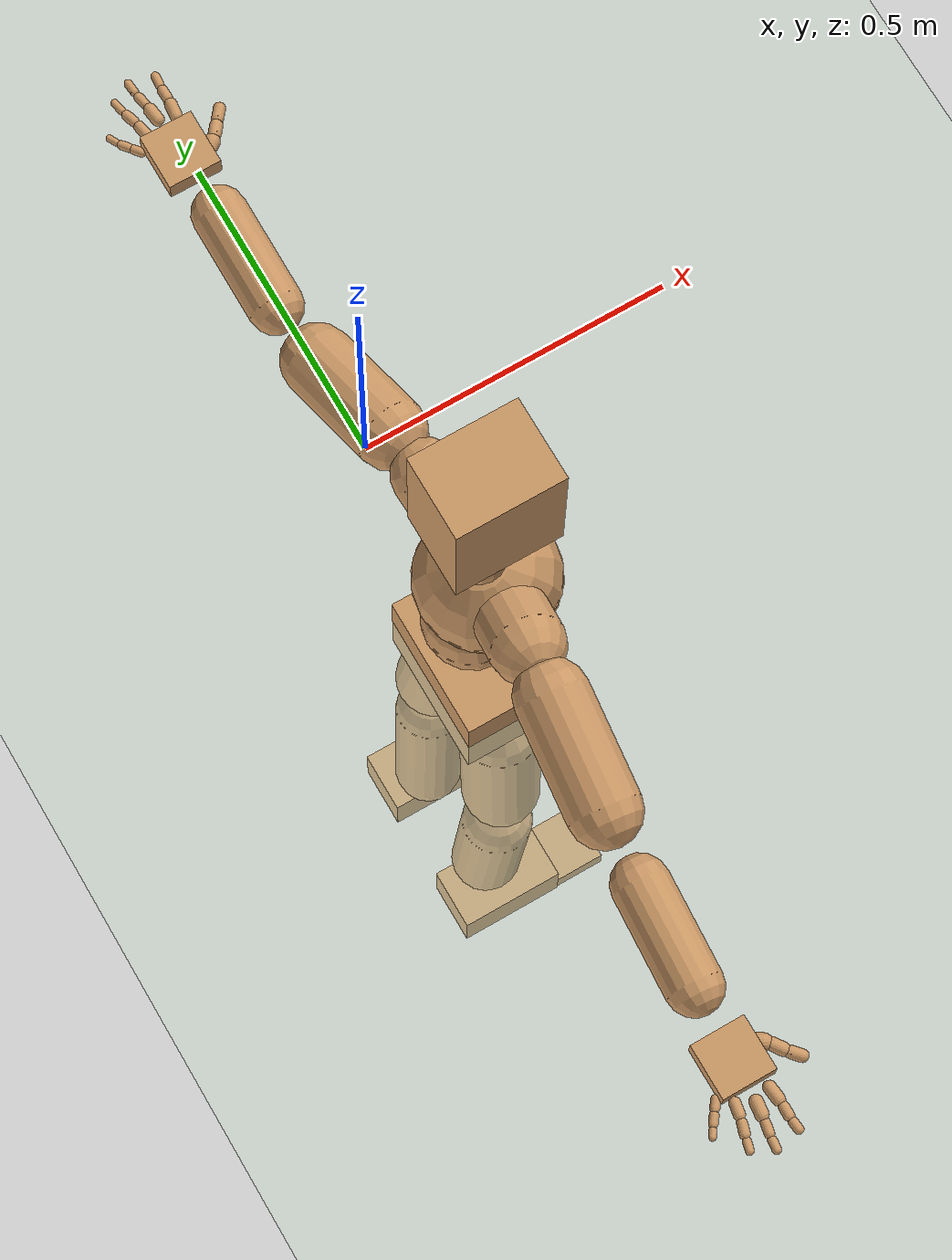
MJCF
<mujoco model="humanoid">
  <compiler coordinate="local" />
  <asset>
    <texture type="skybox" builtin="gradient" rgb1=".4 .5 .6" rgb2="0 0 0" width="100" height="100" />
    <texture builtin="flat" height="1278" mark="cross" markrgb="1 1 1" name="texgeom" random="0.01" rgb1="0.8 0.6 0.4" rgb2="0.8 0.6 0.4" type="cube" width="127" />
    <texture builtin="checker" height="100" name="texplane" rgb1="0 0 0" rgb2="0.8 0.8 0.8" type="2d" width="100" />
    <material name="MatPlane" reflectance="0.5" shininess="1" specular="1" texrepeat="60 60" texture="texplane" />
    <material name="geom" texture="texgeom" texuniform="true" />
  </asset>
  <worldbody>
    <light cutoff="100" diffuse="1 1 1" dir="-0 0 -1.3" directional="true" exponent="1" pos="0 0 1.3" specular=".1 .1 .1" />
    <geom conaffinity="1" condim="3" name="floor" pos="0 0 0" rgba="0.8 0.9 0.8 1" size="100 100 .2" type="plane" material="MatPlane" contype="7" margin="0.001" />
    <body name="Pelvis" pos="0.0031 -0.3514 0.012">
      <geom type="box" density="3021.964055" pos="-0.0168 -0.0031 -0.0215" size="0.084 0.1079 0.0846" quat="1.0000 0.0000 0.0000 0.0000" conaffinity="1" condim="3" contype="7" margin="0.001" rgba="0.8 0.6 .4 1" />
      <body name="L_Hip" pos="-0.026 0.0582 -0.0928">
        <joint name="L_Hip_x" type="hinge" pos="0 0 0" axis="1 0 0" stiffness="800" damping="80" armature="0.02" range="-180.0000 180.0000" limited="true" />
        <joint name="L_Hip_y" type="hinge" pos="0 0 0" axis="0 1 0" stiffness="800" damping="80" armature="0.02" range="-180.0000 180.0000" limited="true" />
        <joint name="L_Hip_z" type="hinge" pos="0 0 0" axis="0 0 1" stiffness="800" damping="80" armature="0.02" range="-180.0000 180.0000" limited="true" />
        <geom type="capsule" contype="1" conaffinity="1" density="2040.816327" fromto="-0.0019 0.0109 -0.0758 -0.0075 0.0438 -0.3030" size="0.0605" condim="3" margin="0.001" rgba="0.8 0.6 .4 1" />
        <body name="L_Knee" pos="-0.0094 0.0547 -0.3788">
          <joint name="L_Knee_x" type="hinge" pos="0 0 0" axis="1 0 0" stiffness="800" damping="80" armature="0.02" range="-180.0000 180.0000" limited="true" />
          <joint name="L_Knee_y" type="hinge" pos="0 0 0" axis="0 1 0" stiffness="800" damping="80" armature="0.02" range="-180.0000 180.0000" limited="true" />
          <joint name="L_Knee_z" type="hinge" pos="0 0 0" axis="0 0 1" stiffness="800" damping="80" armature="0.02" range="-180.0000 180.0000" limited="true" />
          <geom type="capsule" contype="1" conaffinity="1" density="1234.567901" fromto="-0.0064 -0.0087 -0.0806 -0.0255 -0.0348 -0.3224" size="0.0533" condim="3" margin="0.001" rgba="0.8 0.6 .4 1" />
          <body name="L_Ankle" pos="-0.0319 -0.0435 -0.4031">
            <joint name="L_Ankle_x" type="hinge" pos="0 0 0" axis="1 0 0" stiffness="800" damping="80" armature="0.02" range="-180.0000 180.0000" limited="true" />
            <joint name="L_Ankle_y" type="hinge" pos="0 0 0" axis="0 1 0" stiffness="800" damping="80" armature="0.02" range="-180.0000 180.0000" limited="true" />
            <joint name="L_Ankle_z" type="hinge" pos="0 0 0" axis="0 0 1" stiffness="800" damping="80" armature="0.02" range="-180.0000 180.0000" limited="true" />
            <geom type="box" density="445.819676" pos="0.0232 0.0407 -0.0287" size="0.0857 0.0498 0.0463" quat="1.0000 0.0000 0.0000 0.0000" conaffinity="1" condim="3" contype="7" margin="0.001" rgba="0.8 0.6 .4 1" />
            <body name="L_Toe" pos="0.1182 0.0473 -0.058">
              <joint name="L_Toe_x" type="hinge" pos="0 0 0" axis="1 0 0" stiffness="500" damping="50" armature="0.02" range="-180.0000 180.0000" limited="true" />
              <joint name="L_Toe_y" type="hinge" pos="0 0 0" axis="0 1 0" stiffness="500" damping="50" armature="0.02" range="-180.0000 180.0000" limited="true" />
              <joint name="L_Toe_z" type="hinge" pos="0 0 0" axis="0 0 1" stiffness="500" damping="50" armature="0.02" range="-180.0000 180.0000" limited="true" />
              <geom type="box" density="421.766439" pos="0.0256 -0.0065 0.0034" size="0.0495 0.0478 0.0205" quat="1.0000 0.0000 0.0000 0.0000" conaffinity="1" condim="3" contype="7" margin="0.001" rgba="0.8 0.6 .4 1" />
            </body>
          </body>
        </body>
      </body>
      <body name="R_Hip" pos="-0.0213 -0.0633 -0.1039">
        <joint name="R_Hip_x" type="hinge" pos="0 0 0" axis="1 0 0" stiffness="800" damping="80" armature="0.02" range="-180.0000 180.0000" limited="true" />
        <joint name="R_Hip_y" type="hinge" pos="0 0 0" axis="0 1 0" stiffness="800" damping="80" armature="0.02" range="-180.0000 180.0000" limited="true" />
        <joint name="R_Hip_z" type="hinge" pos="0 0 0" axis="0 0 1" stiffness="800" damping="80" armature="0.02" range="-180.0000 180.0000" limited="true" />
        <geom type="capsule" contype="1" conaffinity="1" density="2040.816327" fromto="-0.0034 -0.0088 -0.0725 -0.0135 -0.0354 -0.2899" size="0.0598" condim="3" margin="0.001" rgba="0.8 0.6 .4 1" />
        <body name="R_Knee" pos="-0.0168 -0.0442 -0.3624">
          <joint name="R_Knee_x" type="hinge" pos="0 0 0" axis="1 0 0" stiffness="800" damping="80" armature="0.02" range="-180.0000 180.0000" limited="true" />
          <joint name="R_Knee_y" type="hinge" pos="0 0 0" axis="0 1 0" stiffness="800" damping="80" armature="0.02" range="-180.0000 180.0000" limited="true" />
          <joint name="R_Knee_z" type="hinge" pos="0 0 0" axis="0 0 1" stiffness="800" damping="80" armature="0.02" range="-180.0000 180.0000" limited="true" />
          <geom type="capsule" contype="1" conaffinity="1" density="1234.567901" fromto="-0.0040 0.0031 -0.0821 -0.0162 0.0123 -0.3286" size="0.0551" condim="3" margin="0.001" rgba="0.8 0.6 .4 1" />
          <body name="R_Ankle" pos="-0.0202 0.0154 -0.4107">
            <joint name="R_Ankle_x" type="hinge" pos="0 0 0" axis="1 0 0" stiffness="800" damping="80" armature="0.02" range="-180.0000 180.0000" limited="true" />
            <joint name="R_Ankle_y" type="hinge" pos="0 0 0" axis="0 1 0" stiffness="800" damping="80" armature="0.02" range="-180.0000 180.0000" limited="true" />
            <joint name="R_Ankle_z" type="hinge" pos="0 0 0" axis="0 0 1" stiffness="800" damping="80" armature="0.02" range="-180.0000 180.0000" limited="true" />
            <geom type="box" density="445.807854" pos="0.0142 -0.0243 -0.0263" size="0.0857 0.0498 0.0464" quat="1.0000 0.0000 0.0000 0.0000" conaffinity="1" condim="3" contype="7" margin="0.001" rgba="0.8 0.6 .4 1" />
            <body name="R_Toe" pos="0.119 -0.0388 -0.0583">
              <joint name="R_Toe_x" type="hinge" pos="0 0 0" axis="1 0 0" stiffness="500" damping="50" armature="0.02" range="-180.0000 180.0000" limited="true" />
              <joint name="R_Toe_y" type="hinge" pos="0 0 0" axis="0 1 0" stiffness="500" damping="50" armature="0.02" range="-180.0000 180.0000" limited="true" />
              <joint name="R_Toe_z" type="hinge" pos="0 0 0" axis="0 0 1" stiffness="500" damping="50" armature="0.02" range="-180.0000 180.0000" limited="true" />
              <geom type="box" density="421.764462" pos="0.0158 0.0145 0.0062" size="0.0495 0.0478 0.0205" quat="1.0000 0.0000 0.0000 0.0000" conaffinity="1" condim="3" contype="7" margin="0.001" rgba="0.8 0.6 .4 1" />
            </body>
          </body>
        </body>
      </body>
      <body name="Torso" pos="-0.0276 -0.0028 0.1099">
        <joint name="Torso_x" type="hinge" pos="0 0 0" axis="1 0 0" stiffness="1000" damping="100" armature="0.02" range="-180.0000 180.0000" limited="true" />
        <joint name="Torso_y" type="hinge" pos="0 0 0" axis="0 1 0" stiffness="1000" damping="100" armature="0.02" range="-180.0000 180.0000" limited="true" />
        <joint name="Torso_z" type="hinge" pos="0 0 0" axis="0 0 1" stiffness="1000" damping="100" armature="0.02" range="-180.0000 180.0000" limited="true" />
        <geom type="capsule" contype="1" conaffinity="1" density="2040.816327" fromto="-0.0027 0.0043 0.0593 -0.0033 0.0052 0.0725" size="0.0719" condim="3" margin="0.001" rgba="0.8 0.6 .4 1" />
        <body name="Spine" pos="-0.0059 0.0094 0.1319">
          <joint name="Spine_x" type="hinge" pos="0 0 0" axis="1 0 0" stiffness="1000" damping="100" armature="0.02" range="-180.0000 180.0000" limited="true" />
          <joint name="Spine_y" type="hinge" pos="0 0 0" axis="0 1 0" stiffness="1000" damping="100" armature="0.02" range="-180.0000 180.0000" limited="true" />
          <joint name="Spine_z" type="hinge" pos="0 0 0" axis="0 0 1" stiffness="1000" damping="100" armature="0.02" range="-180.0000 180.0000" limited="true" />
          <geom type="capsule" contype="1" conaffinity="1" density="2040.816327" fromto="0.0128 -0.0051 0.0235 0.0156 -0.0062 0.0287" size="0.076" condim="3" margin="0.001" rgba="0.8 0.6 .4 1" />
          <body name="Chest" pos="0.0284 -0.0113 0.0522">
            <joint name="Chest_x" type="hinge" pos="0 0 0" axis="1 0 0" stiffness="1000" damping="100" armature="0.02" range="-180.0000 180.0000" limited="true" />
            <joint name="Chest_y" type="hinge" pos="0 0 0" axis="0 1 0" stiffness="1000" damping="100" armature="0.02" range="-180.0000 180.0000" limited="true" />
            <joint name="Chest_z" type="hinge" pos="0 0 0" axis="0 0 1" stiffness="1000" damping="100" armature="0.02" range="-180.0000 180.0000" limited="true" />
            <geom type="capsule" contype="1" conaffinity="1" density="2040.816327" fromto="-0.0078 -0.0020 0.0502 -0.0096 -0.0025 0.0613" size="0.1028" condim="3" margin="0.001" rgba="0.8 0.6 .4 1" />
            <body name="Neck" pos="-0.0316 -0.0122 0.1652">
              <joint name="Neck_x" type="hinge" pos="0 0 0" axis="1 0 0" stiffness="500" damping="50" armature="0.02" range="-180.0000 180.0000" limited="true" />
              <joint name="Neck_y" type="hinge" pos="0 0 0" axis="0 1 0" stiffness="500" damping="50" armature="0.02" range="-180.0000 180.0000" limited="true" />
              <joint name="Neck_z" type="hinge" pos="0 0 0" axis="0 0 1" stiffness="500" damping="50" armature="0.02" range="-180.0000 180.0000" limited="true" />
              <geom type="capsule" contype="1" conaffinity="1" density="1000" fromto="0.0041 0.0050 0.0321 0.0166 0.0198 0.1284" size="0.0419" condim="3" margin="0.001" rgba="0.8 0.6 .4 1" />
              <body name="Head" pos="0.0207 0.0248 0.1605">
                <joint name="Head_x" type="hinge" pos="0 0 0" axis="1 0 0" stiffness="500" damping="50" armature="0.02" range="-180.0000 180.0000" limited="true" />
                <joint name="Head_y" type="hinge" pos="0 0 0" axis="0 1 0" stiffness="500" damping="50" armature="0.02" range="-180.0000 180.0000" limited="true" />
                <joint name="Head_z" type="hinge" pos="0 0 0" axis="0 0 1" stiffness="500" damping="50" armature="0.02" range="-180.0000 180.0000" limited="true" />
                <geom type="box" density="1018.531631" pos="-0.0008 -0.0111 0.0414" size="0.0797 0.0609 0.1096" quat="1.0000 0.0000 0.0000 0.0000" conaffinity="1" condim="3" contype="7" margin="0.001" rgba="0.8 0.6 .4 1" />
              </body>
            </body>
            <body name="L_Thorax" pos="-0.0072 0.0464 0.0849">
              <joint name="L_Thorax_x" type="hinge" pos="0 0 0" axis="1 0 0" stiffness="500" damping="50" armature="0.02" range="-180.0000 180.0000" limited="true" />
              <joint name="L_Thorax_y" type="hinge" pos="0 0 0" axis="0 1 0" stiffness="500" damping="50" armature="0.02" range="-180.0000 180.0000" limited="true" />
              <joint name="L_Thorax_z" type="hinge" pos="0 0 0" axis="0 0 1" stiffness="500" damping="50" armature="0.02" range="-180.0000 180.0000" limited="true" />
              <geom type="capsule" contype="1" conaffinity="1" density="1000" fromto="-0.0031 0.0238 0.0115 -0.0124 0.0954 0.0462" size="0.0488" condim="3" margin="0.001" rgba="0.8 0.6 .4 1" />
              <body name="L_Shoulder" pos="-0.0155 0.1192 0.0577">
                <joint name="L_Shoulder_x" type="hinge" pos="0 0 0" axis="1 0 0" stiffness="500" damping="50" armature="0.02" range="-180.0000 180.0000" limited="true" />
                <joint name="L_Shoulder_y" type="hinge" pos="0 0 0" axis="0 1 0" stiffness="500" damping="50" armature="0.02" range="-180.0000 180.0000" limited="true" />
                <joint name="L_Shoulder_z" type="hinge" pos="0 0 0" axis="0 0 1" stiffness="500" damping="50" armature="0.02" range="-180.0000 180.0000" limited="true" />
                <geom type="capsule" contype="1" conaffinity="1" density="1000" fromto="-0.0085 0.0508 -0.0144 -0.0340 0.2033 -0.0577" size="0.0522" condim="3" margin="0.001" rgba="0.8 0.6 .4 1" />
                <body name="L_Elbow" pos="-0.0425 0.2541 -0.0722">
                  <joint name="L_Elbow_x" type="hinge" pos="0 0 0" axis="1 0 0" stiffness="500" damping="50" armature="0.02" range="-180.0000 180.0000" limited="true" />
                  <joint name="L_Elbow_y" type="hinge" pos="0 0 0" axis="0 1 0" stiffness="500" damping="50" armature="0.02" range="-180.0000 180.0000" limited="true" />
                  <joint name="L_Elbow_z" type="hinge" pos="0 0 0" axis="0 0 1" stiffness="500" damping="50" armature="0.02" range="-180.0000 180.0000" limited="true" />
                  <geom type="capsule" contype="1" conaffinity="1" density="1000" fromto="-0.0005 0.0504 0.0046 -0.0020 0.2016 0.0186" size="0.0401" condim="3" margin="0.001" rgba="0.8 0.6 .4 1" />
                  <body name="L_Wrist" pos="-0.0025 0.252 0.0232">
                    <joint name="L_Wrist_x" type="hinge" pos="0 0 0" axis="1 0 0" stiffness="300" damping="30" armature="0.02" range="-180.0000 180.0000" limited="true" />
                    <joint name="L_Wrist_y" type="hinge" pos="0 0 0" axis="0 1 0" stiffness="300" damping="30" armature="0.02" range="-180.0000 180.0000" limited="true" />
                    <joint name="L_Wrist_z" type="hinge" pos="0 0 0" axis="0 0 1" stiffness="300" damping="30" armature="0.02" range="-180.0000 180.0000" limited="true" />
                    <geom type="box" density="1198.336433" pos="-0.0031 0.0523 -0.0013" size="0.04 0.0428 0.0159" quat="1.0000 0.0000 0.0000 0.0000" conaffinity="1" condim="3" contype="7" margin="0.001" rgba="0.8 0.6 .4 1" />
                    <body name="L_Index1" pos="0.0194 0.1019 -0.0087">
                      <joint name="L_Index1_x" type="hinge" pos="0 0 0" axis="1 0 0" stiffness="100" damping="10" armature="0.02" range="-90 20" limited="true" />
                      <joint name="L_Index1_y" type="hinge" pos="0 0 0" axis="0 1 0" stiffness="100" damping="10" armature="0.02" range="-0.1 0.1" limited="true" />
                      <joint name="L_Index1_z" type="hinge" pos="0 0 0" axis="0 0 1" stiffness="100" damping="10" armature="0.02" range="-20 20" limited="true" />
                      <geom type="capsule" contype="1" conaffinity="1" density="1000" fromto="0.0006 0.0064 0.0004 0.0024 0.0256 0.0018" size="0.0091" condim="3" margin="0.001" rgba="0.8 0.6 .4 1" />
                      <body name="L_Index2" pos="0.003 0.0319 0.0022">
                        <joint name="L_Index2_x" type="hinge" pos="0 0 0" axis="1 0 0" stiffness="100" damping="10" armature="0.02" range="-100 0" limited="true" />
                        <joint name="L_Index2_y" type="hinge" pos="0 0 0" axis="0 1 0" stiffness="100" damping="10" armature="0.02" range="-0.1 0.1" limited="true" />
                        <joint name="L_Index2_z" type="hinge" pos="0 0 0" axis="0 0 1" stiffness="100" damping="10" armature="0.02" range="-0.1 0.1" limited="true" />
                        <geom type="capsule" contype="1" conaffinity="1" density="1000" fromto="0.0000 0.0045 -0.0005 0.0000 0.0180 -0.0019" size="0.0076" condim="3" margin="0.001" rgba="0.8 0.6 .4 1" />
                        <body name="L_Index3" pos="0.0001 0.0225 -0.0024">
                          <joint name="L_Index3_x" type="hinge" pos="0 0 0" axis="1 0 0" stiffness="100" damping="10" armature="0.02" range="-80 0" limited="true" />
                          <joint name="L_Index3_y" type="hinge" pos="0 0 0" axis="0 1 0" stiffness="100" damping="10" armature="0.02" range="-0.1 0.1" limited="true" />
                          <joint name="L_Index3_z" type="hinge" pos="0 0 0" axis="0 0 1" stiffness="100" damping="10" armature="0.02" range="-0.1 0.1" limited="true" />
                          <geom type="capsule" contype="1" conaffinity="1" density="1000" fromto="0.0004 0.0049 -0.0001 0.0016 0.0196 -0.0003" size="0.0064" condim="3" margin="0.001" rgba="0.8 0.6 .4 1" />
                        </body>
                      </body>
                    </body>
                    <body name="L_Middle1" pos="-0.004 0.1094 -0.0063">
                      <joint name="L_Middle1_x" type="hinge" pos="0 0 0" axis="1 0 0" stiffness="100" damping="10" armature="0.02" range="-90 20" limited="true" />
                      <joint name="L_Middle1_y" type="hinge" pos="0 0 0" axis="0 1 0" stiffness="100" damping="10" armature="0.02" range="-0.1 0.1" limited="true" />
                      <joint name="L_Middle1_z" type="hinge" pos="0 0 0" axis="0 0 1" stiffness="100" damping="10" armature="0.02" range="-20 20" limited="true" />
                      <geom type="capsule" contype="1" conaffinity="1" density="1000" fromto="-0.0008 0.0061 0.0002 -0.0032 0.0245 0.0006" size="0.0094" condim="3" margin="0.001" rgba="0.8 0.6 .4 1" />
                      <body name="L_Middle2" pos="-0.004 0.0306 0.0008">
                        <joint name="L_Middle2_x" type="hinge" pos="0 0 0" axis="1 0 0" stiffness="100" damping="10" armature="0.02" range="-100 0" limited="true" />
                        <joint name="L_Middle2_y" type="hinge" pos="0 0 0" axis="0 1 0" stiffness="100" damping="10" armature="0.02" range="-0.1 0.1" limited="true" />
                        <joint name="L_Middle2_z" type="hinge" pos="0 0 0" axis="0 0 1" stiffness="100" damping="10" armature="0.02" range="-0.1 0.1" limited="true" />
                        <geom type="capsule" contype="1" conaffinity="1" density="1000" fromto="-0.0008 0.0047 -0.0004 -0.0033 0.0188 -0.0016" size="0.007" condim="3" margin="0.001" rgba="0.8 0.6 .4 1" />
                        <body name="L_Middle3" pos="-0.0041 0.0235 -0.002">
                          <joint name="L_Middle3_x" type="hinge" pos="0 0 0" axis="1 0 0" stiffness="100" damping="10" armature="0.02" range="-80 0" limited="true" />
                          <joint name="L_Middle3_y" type="hinge" pos="0 0 0" axis="0 1 0" stiffness="100" damping="10" armature="0.02" range="-0.1 0.1" limited="true" />
                          <joint name="L_Middle3_z" type="hinge" pos="0 0 0" axis="0 0 1" stiffness="100" damping="10" armature="0.02" range="-0.1 0.1" limited="true" />
                          <geom type="capsule" contype="1" conaffinity="1" density="1000" fromto="-0.0004 0.0051 -0.0000 -0.0017 0.0204 -0.0000" size="0.0061" condim="3" margin="0.001" rgba="0.8 0.6 .4 1" />
                        </body>
                      </body>
                    </body>
                    <body name="L_Pinky1" pos="-0.0437 0.084 -0.0145">
                      <joint name="L_Pinky1_x" type="hinge" pos="0 0 0" axis="1 0 0" stiffness="100" damping="10" armature="0.02" range="-90 20" limited="true" />
                      <joint name="L_Pinky1_y" type="hinge" pos="0 0 0" axis="0 1 0" stiffness="100" damping="10" armature="0.02" range="-0.1 0.1" limited="true" />
                      <joint name="L_Pinky1_z" type="hinge" pos="0 0 0" axis="0 0 1" stiffness="100" damping="10" armature="0.02" range="-20 20" limited="true" />
                      <geom type="capsule" contype="1" conaffinity="1" density="1000" fromto="-0.0024 0.0031 -0.0002 -0.0096 0.0124 -0.0009" size="0.0067" condim="3" margin="0.001" rgba="0.8 0.6 .4 1" />
                      <body name="L_Pinky2" pos="-0.012 0.0155 -0.0011">
                        <joint name="L_Pinky2_x" type="hinge" pos="0 0 0" axis="1 0 0" stiffness="100" damping="10" armature="0.02" range="-100 0" limited="true" />
                        <joint name="L_Pinky2_y" type="hinge" pos="0 0 0" axis="0 1 0" stiffness="100" damping="10" armature="0.02" range="-0.1 0.1" limited="true" />
                        <joint name="L_Pinky2_z" type="hinge" pos="0 0 0" axis="0 0 1" stiffness="100" damping="10" armature="0.02" range="-0.1 0.1" limited="true" />
                        <geom type="capsule" contype="1" conaffinity="1" density="1000" fromto="-0.0022 0.0031 -0.0003 -0.0090 0.0124 -0.0013" size="0.0065" condim="3" margin="0.001" rgba="0.8 0.6 .4 1" />
                        <body name="L_Pinky3" pos="-0.0112 0.0155 -0.0017">
                          <joint name="L_Pinky3_x" type="hinge" pos="0 0 0" axis="1 0 0" stiffness="100" damping="10" armature="0.02" range="-80 0" limited="true" />
                          <joint name="L_Pinky3_y" type="hinge" pos="0 0 0" axis="0 1 0" stiffness="100" damping="10" armature="0.02" range="-0.1 0.1" limited="true" />
                          <joint name="L_Pinky3_z" type="hinge" pos="0 0 0" axis="0 0 1" stiffness="100" damping="10" armature="0.02" range="-0.1 0.1" limited="true" />
                          <geom type="capsule" contype="1" conaffinity="1" density="1000" fromto="-0.0018 0.0035 0.0001 -0.0074 0.0140 0.0003" size="0.005" condim="3" margin="0.001" rgba="0.8 0.6 .4 1" />
                        </body>
                      </body>
                    </body>
                    <body name="L_Ring1" pos="-0.0273 0.0974 -0.0093">
                      <joint name="L_Ring1_x" type="hinge" pos="0 0 0" axis="1 0 0" stiffness="100" damping="10" armature="0.02" range="-90 20" limited="true" />
                      <joint name="L_Ring1_y" type="hinge" pos="0 0 0" axis="0 1 0" stiffness="100" damping="10" armature="0.02" range="-0.1 0.1" limited="true" />
                      <joint name="L_Ring1_z" type="hinge" pos="0 0 0" axis="0 0 1" stiffness="100" damping="10" armature="0.02" range="-20 20" limited="true" />
                      <geom type="capsule" contype="1" conaffinity="1" density="1000" fromto="-0.0011 0.0056 0.0003 -0.0042 0.0224 0.0012" size="0.008" condim="3" margin="0.001" rgba="0.8 0.6 .4 1" />
                      <body name="L_Ring2" pos="-0.0053 0.028 0.0015">
                        <joint name="L_Ring2_x" type="hinge" pos="0 0 0" axis="1 0 0" stiffness="100" damping="10" armature="0.02" range="-100 0" limited="true" />
                        <joint name="L_Ring2_y" type="hinge" pos="0 0 0" axis="0 1 0" stiffness="100" damping="10" armature="0.02" range="-0.1 0.1" limited="true" />
                        <joint name="L_Ring2_z" type="hinge" pos="0 0 0" axis="0 0 1" stiffness="100" damping="10" armature="0.02" range="-0.1 0.1" limited="true" />
                        <geom type="capsule" contype="1" conaffinity="1" density="1000" fromto="-0.0014 0.0046 -0.0003 -0.0057 0.0183 -0.0012" size="0.0074" condim="3" margin="0.001" rgba="0.8 0.6 .4 1" />
                        <body name="L_Ring3" pos="-0.0071 0.0228 -0.0015">
                          <joint name="L_Ring3_x" type="hinge" pos="0 0 0" axis="1 0 0" stiffness="100" damping="10" armature="0.02" range="-80 0" limited="true" />
                          <joint name="L_Ring3_y" type="hinge" pos="0 0 0" axis="0 1 0" stiffness="100" damping="10" armature="0.02" range="-0.1 0.1" limited="true" />
                          <joint name="L_Ring3_z" type="hinge" pos="0 0 0" axis="0 0 1" stiffness="100" damping="10" armature="0.02" range="-0.1 0.1" limited="true" />
                          <geom type="capsule" contype="1" conaffinity="1" density="1000" fromto="-0.0010 0.0050 0.0001 -0.0041 0.0199 0.0004" size="0.0057" condim="3" margin="0.001" rgba="0.8 0.6 .4 1" />
                        </body>
                      </body>
                    </body>
                    <body name="L_Thumb1" pos="0.0256 0.0406 -0.018">
                      <joint name="L_Thumb1_x" type="hinge" pos="0 0 0" axis="1 0 0" stiffness="100" damping="10" armature="0.02" range="-45 45" limited="true" />
                      <joint name="L_Thumb1_y" type="hinge" pos="0 0 0" axis="0 1 0" stiffness="100" damping="10" armature="0.02" range="-45 130" limited="true" />
                      <joint name="L_Thumb1_z" type="hinge" pos="0 0 0" axis="0 0 1" stiffness="100" damping="10" armature="0.02" range="-30 70" limited="true" />
                      <geom type="capsule" contype="1" conaffinity="1" density="1000" fromto="0.0050 0.0034 0.0002 0.0200 0.0136 0.0008" size="0.012" condim="3" margin="0.001" rgba="0.8 0.6 .4 1" />
                      <body name="L_Thumb2" pos="0.025 0.017 0.001">
                        <joint name="L_Thumb2_x" type="hinge" pos="0 0 0" axis="1 0 0" stiffness="100" damping="10" armature="0.02" range="-0.1 0.1" limited="true" />
                        <joint name="L_Thumb2_y" type="hinge" pos="0 0 0" axis="0 1 0" stiffness="100" damping="10" armature="0.02" range="-0.1 0.1" limited="true" />
                        <joint name="L_Thumb2_z" type="hinge" pos="0 0 0" axis="0 0 1" stiffness="100" damping="10" armature="0.02" range="-20 55" limited="true" />
                        <geom type="capsule" contype="1" conaffinity="1" density="1000" fromto="0.0031 0.0041 -0.0010 0.0124 0.0164 -0.0041" size="0.0095" condim="3" margin="0.001" rgba="0.8 0.6 .4 1" />
                        <body name="L_Thumb3" pos="0.0155 0.0205 -0.0052">
                          <joint name="L_Thumb3_x" type="hinge" pos="0 0 0" axis="1 0 0" stiffness="100" damping="10" armature="0.02" range="-0.1 0.1" limited="true" />
                          <joint name="L_Thumb3_y" type="hinge" pos="0 0 0" axis="0 1 0" stiffness="100" damping="10" armature="0.02" range="-0.1 0.1" limited="true" />
                          <joint name="L_Thumb3_z" type="hinge" pos="0 0 0" axis="0 0 1" stiffness="100" damping="10" armature="0.02" range="-15 80" limited="true" />
                          <geom type="capsule" contype="1" conaffinity="1" density="1000" fromto="0.0035 0.0045 -0.0006 0.0140 0.0180 -0.0025" size="0.0087" condim="3" margin="0.001" rgba="0.8 0.6 .4 1" />
                        </body>
                      </body>
                    </body>
                  </body>
                </body>
              </body>
            </body>
            <body name="R_Thorax" pos="-0.0134 -0.0477 0.0843">
              <joint name="R_Thorax_x" type="hinge" pos="0 0 0" axis="1 0 0" stiffness="500" damping="50" armature="0.02" range="-180.0000 180.0000" limited="true" />
              <joint name="R_Thorax_y" type="hinge" pos="0 0 0" axis="0 1 0" stiffness="500" damping="50" armature="0.02" range="-180.0000 180.0000" limited="true" />
              <joint name="R_Thorax_z" type="hinge" pos="0 0 0" axis="0 0 1" stiffness="500" damping="50" armature="0.02" range="-180.0000 180.0000" limited="true" />
              <geom type="capsule" contype="1" conaffinity="1" density="1000" fromto="-0.0025 -0.0205 0.0107 -0.0101 -0.0821 0.0428" size="0.0536" condim="3" margin="0.001" rgba="0.8 0.6 .4 1" />
              <body name="R_Shoulder" pos="-0.0127 -0.1026 0.0535">
                <joint name="R_Shoulder_x" type="hinge" pos="0 0 0" axis="1 0 0" stiffness="500" damping="50" armature="0.02" range="-180.0000 180.0000" limited="true" />
                <joint name="R_Shoulder_y" type="hinge" pos="0 0 0" axis="0 1 0" stiffness="500" damping="50" armature="0.02" range="-180.0000 180.0000" limited="true" />
                <joint name="R_Shoulder_z" type="hinge" pos="0 0 0" axis="0 0 1" stiffness="500" damping="50" armature="0.02" range="-180.0000 180.0000" limited="true" />
                <geom type="capsule" contype="1" conaffinity="1" density="1000" fromto="-0.0053 -0.0542 -0.0073 -0.0212 -0.2169 -0.0292" size="0.0521" condim="3" margin="0.001" rgba="0.8 0.6 .4 1" />
                <body name="R_Elbow" pos="-0.0265 -0.2711 -0.0365">
                  <joint name="R_Elbow_x" type="hinge" pos="0 0 0" axis="1 0 0" stiffness="500" damping="50" armature="0.02" range="-180.0000 180.0000" limited="true" />
                  <joint name="R_Elbow_y" type="hinge" pos="0 0 0" axis="0 1 0" stiffness="500" damping="50" armature="0.02" range="-180.0000 180.0000" limited="true" />
                  <joint name="R_Elbow_z" type="hinge" pos="0 0 0" axis="0 0 1" stiffness="500" damping="50" armature="0.02" range="-180.0000 180.0000" limited="true" />
                  <geom type="capsule" contype="1" conaffinity="1" density="1000" fromto="-0.0031 -0.0499 -0.0009 -0.0123 -0.1994 -0.0036" size="0.0404" condim="3" margin="0.001" rgba="0.8 0.6 .4 1" />
                  <body name="R_Wrist" pos="-0.0153 -0.2493 -0.0045">
                    <joint name="R_Wrist_x" type="hinge" pos="0 0 0" axis="1 0 0" stiffness="300" damping="30" armature="0.02" range="-180.0000 180.0000" limited="true" />
                    <joint name="R_Wrist_y" type="hinge" pos="0 0 0" axis="0 1 0" stiffness="300" damping="30" armature="0.02" range="-180.0000 180.0000" limited="true" />
                    <joint name="R_Wrist_z" type="hinge" pos="0 0 0" axis="0 0 1" stiffness="300" damping="30" armature="0.02" range="-180.0000 180.0000" limited="true" />
                    <geom type="box" density="1230.823712" pos="-0.0029 -0.0537 -0.0044" size="0.04 0.0402 0.0159" quat="1.0000 0.0000 0.0000 0.0000" conaffinity="1" condim="3" contype="7" margin="0.001" rgba="0.8 0.6 .4 1" />
                    <body name="R_Index1" pos="0.0196 -0.0999 -0.0118">
                      <joint name="R_Index1_x" type="hinge" pos="0 0 0" axis="1 0 0" stiffness="100" damping="10" armature="0.02" range="-20 90" limited="true" />
                      <joint name="R_Index1_y" type="hinge" pos="0 0 0" axis="0 1 0" stiffness="100" damping="10" armature="0.02" range="-0.1 0.1" limited="true" />
                      <joint name="R_Index1_z" type="hinge" pos="0 0 0" axis="0 0 1" stiffness="100" damping="10" armature="0.02" range="-20 20" limited="true" />
                      <geom type="capsule" contype="1" conaffinity="1" density="1000" fromto="0.0006 -0.0064 0.0004 0.0024 -0.0256 0.0018" size="0.0091" condim="3" margin="0.001" rgba="0.8 0.6 .4 1" />
                      <body name="R_Index2" pos="0.003 -0.0319 0.0022">
                        <joint name="R_Index2_x" type="hinge" pos="0 0 0" axis="1 0 0" stiffness="100" damping="10" armature="0.02" range="0 100" limited="true" />
                        <joint name="R_Index2_y" type="hinge" pos="0 0 0" axis="0 1 0" stiffness="100" damping="10" armature="0.02" range="-0.1 0.1" limited="true" />
                        <joint name="R_Index2_z" type="hinge" pos="0 0 0" axis="0 0 1" stiffness="100" damping="10" armature="0.02" range="-0.1 0.1" limited="true" />
                        <geom type="capsule" contype="1" conaffinity="1" density="1000" fromto="0.0000 -0.0045 -0.0005 0.0000 -0.0180 -0.0019" size="0.0076" condim="3" margin="0.001" rgba="0.8 0.6 .4 1" />
                        <body name="R_Index3" pos="0.0001 -0.0225 -0.0023">
                          <joint name="R_Index3_x" type="hinge" pos="0 0 0" axis="1 0 0" stiffness="100" damping="10" armature="0.02" range="0 80" limited="true" />
                          <joint name="R_Index3_y" type="hinge" pos="0 0 0" axis="0 1 0" stiffness="100" damping="10" armature="0.02" range="-0.1 0.1" limited="true" />
                          <joint name="R_Index3_z" type="hinge" pos="0 0 0" axis="0 0 1" stiffness="100" damping="10" armature="0.02" range="-0.1 0.1" limited="true" />
                          <geom type="capsule" contype="1" conaffinity="1" density="1000" fromto="0.0004 -0.0041 -0.0001 0.0016 -0.0164 -0.0003" size="0.0067" condim="3" margin="0.001" rgba="0.8 0.6 .4 1" />
                        </body>
                      </body>
                    </body>
                    <body name="R_Middle1" pos="-0.0037 -0.1074 -0.0094">
                      <joint name="R_Middle1_x" type="hinge" pos="0 0 0" axis="1 0 0" stiffness="100" damping="10" armature="0.02" range="-20 90" limited="true" />
                      <joint name="R_Middle1_y" type="hinge" pos="0 0 0" axis="0 1 0" stiffness="100" damping="10" armature="0.02" range="-0.1 0.1" limited="true" />
                      <joint name="R_Middle1_z" type="hinge" pos="0 0 0" axis="0 0 1" stiffness="100" damping="10" armature="0.02" range="-20 20" limited="true" />
                      <geom type="capsule" contype="1" conaffinity="1" density="1000" fromto="-0.0008 -0.0061 0.0002 -0.0032 -0.0245 0.0006" size="0.0094" condim="3" margin="0.001" rgba="0.8 0.6 .4 1" />
                      <body name="R_Middle2" pos="-0.004 -0.0306 0.0008">
                        <joint name="R_Middle2_x" type="hinge" pos="0 0 0" axis="1 0 0" stiffness="100" damping="10" armature="0.02" range="0 100" limited="true" />
                        <joint name="R_Middle2_y" type="hinge" pos="0 0 0" axis="0 1 0" stiffness="100" damping="10" armature="0.02" range="-0.1 0.1" limited="true" />
                        <joint name="R_Middle2_z" type="hinge" pos="0 0 0" axis="0 0 1" stiffness="100" damping="10" armature="0.02" range="-0.1 0.1" limited="true" />
                        <geom type="capsule" contype="1" conaffinity="1" density="1000" fromto="-0.0008 -0.0047 -0.0004 -0.0033 -0.0188 -0.0016" size="0.007" condim="3" margin="0.001" rgba="0.8 0.6 .4 1" />
                        <body name="R_Middle3" pos="-0.0041 -0.0235 -0.002">
                          <joint name="R_Middle3_x" type="hinge" pos="0 0 0" axis="1 0 0" stiffness="100" damping="10" armature="0.02" range="0 80" limited="true" />
                          <joint name="R_Middle3_y" type="hinge" pos="0 0 0" axis="0 1 0" stiffness="100" damping="10" armature="0.02" range="-0.1 0.1" limited="true" />
                          <joint name="R_Middle3_z" type="hinge" pos="0 0 0" axis="0 0 1" stiffness="100" damping="10" armature="0.02" range="-0.1 0.1" limited="true" />
                          <geom type="capsule" contype="1" conaffinity="1" density="1000" fromto="-0.0004 -0.0043 -0.0000 -0.0017 -0.0172 -0.0000" size="0.0064" condim="3" margin="0.001" rgba="0.8 0.6 .4 1" />
                        </body>
                      </body>
                    </body>
                    <body name="R_Pinky1" pos="-0.0435 -0.082 -0.0176">
                      <joint name="R_Pinky1_x" type="hinge" pos="0 0 0" axis="1 0 0" stiffness="100" damping="10" armature="0.02" range="-20 90" limited="true" />
                      <joint name="R_Pinky1_y" type="hinge" pos="0 0 0" axis="0 1 0" stiffness="100" damping="10" armature="0.02" range="-0.1 0.1" limited="true" />
                      <joint name="R_Pinky1_z" type="hinge" pos="0 0 0" axis="0 0 1" stiffness="100" damping="10" armature="0.02" range="-20 20" limited="true" />
                      <geom type="capsule" contype="1" conaffinity="1" density="1000" fromto="-0.0024 -0.0031 -0.0002 -0.0096 -0.0124 -0.0009" size="0.0067" condim="3" margin="0.001" rgba="0.8 0.6 .4 1" />
                      <body name="R_Pinky2" pos="-0.012 -0.0155 -0.0011">
                        <joint name="R_Pinky2_x" type="hinge" pos="0 0 0" axis="1 0 0" stiffness="100" damping="10" armature="0.02" range="0 100" limited="true" />
                        <joint name="R_Pinky2_y" type="hinge" pos="0 0 0" axis="0 1 0" stiffness="100" damping="10" armature="0.02" range="-0.1 0.1" limited="true" />
                        <joint name="R_Pinky2_z" type="hinge" pos="0 0 0" axis="0 0 1" stiffness="100" damping="10" armature="0.02" range="-0.1 0.1" limited="true" />
                        <geom type="capsule" contype="1" conaffinity="1" density="1000" fromto="-0.0022 -0.0031 -0.0003 -0.0090 -0.0124 -0.0013" size="0.0065" condim="3" margin="0.001" rgba="0.8 0.6 .4 1" />
                        <body name="R_Pinky3" pos="-0.0112 -0.0155 -0.0017">
                          <joint name="R_Pinky3_x" type="hinge" pos="0 0 0" axis="1 0 0" stiffness="100" damping="10" armature="0.02" range="0 80" limited="true" />
                          <joint name="R_Pinky3_y" type="hinge" pos="0 0 0" axis="0 1 0" stiffness="100" damping="10" armature="0.02" range="-0.1 0.1" limited="true" />
                          <joint name="R_Pinky3_z" type="hinge" pos="0 0 0" axis="0 0 1" stiffness="100" damping="10" armature="0.02" range="-0.1 0.1" limited="true" />
                          <geom type="capsule" contype="1" conaffinity="1" density="1000" fromto="-0.0018 -0.0027 0.0001 -0.0074 -0.0108 0.0003" size="0.0052" condim="3" margin="0.001" rgba="0.8 0.6 .4 1" />
                        </body>
                      </body>
                    </body>
                    <body name="R_Ring1" pos="-0.0271 -0.0954 -0.0124">
                      <joint name="R_Ring1_x" type="hinge" pos="0 0 0" axis="1 0 0" stiffness="100" damping="10" armature="0.02" range="-20 90" limited="true" />
                      <joint name="R_Ring1_y" type="hinge" pos="0 0 0" axis="0 1 0" stiffness="100" damping="10" armature="0.02" range="-0.1 0.1" limited="true" />
                      <joint name="R_Ring1_z" type="hinge" pos="0 0 0" axis="0 0 1" stiffness="100" damping="10" armature="0.02" range="-20 20" limited="true" />
                      <geom type="capsule" contype="1" conaffinity="1" density="1000" fromto="-0.0011 -0.0056 0.0003 -0.0042 -0.0224 0.0012" size="0.008" condim="3" margin="0.001" rgba="0.8 0.6 .4 1" />
                      <body name="R_Ring2" pos="-0.0053 -0.028 0.0015">
                        <joint name="R_Ring2_x" type="hinge" pos="0 0 0" axis="1 0 0" stiffness="100" damping="10" armature="0.02" range="0 100" limited="true" />
                        <joint name="R_Ring2_y" type="hinge" pos="0 0 0" axis="0 1 0" stiffness="100" damping="10" armature="0.02" range="-0.1 0.1" limited="true" />
                        <joint name="R_Ring2_z" type="hinge" pos="0 0 0" axis="0 0 1" stiffness="100" damping="10" armature="0.02" range="-0.1 0.1" limited="true" />
                        <geom type="capsule" contype="1" conaffinity="1" density="1000" fromto="-0.0014 -0.0046 -0.0003 -0.0057 -0.0183 -0.0012" size="0.0074" condim="3" margin="0.001" rgba="0.8 0.6 .4 1" />
                        <body name="R_Ring3" pos="-0.0071 -0.0228 -0.0015">
                          <joint name="R_Ring3_x" type="hinge" pos="0 0 0" axis="1 0 0" stiffness="100" damping="10" armature="0.02" range="0 80" limited="true" />
                          <joint name="R_Ring3_y" type="hinge" pos="0 0 0" axis="0 1 0" stiffness="100" damping="10" armature="0.02" range="-0.1 0.1" limited="true" />
                          <joint name="R_Ring3_z" type="hinge" pos="0 0 0" axis="0 0 1" stiffness="100" damping="10" armature="0.02" range="-0.1 0.1" limited="true" />
                          <geom type="capsule" contype="1" conaffinity="1" density="1000" fromto="-0.0010 -0.0042 0.0001 -0.0041 -0.0167 0.0004" size="0.006" condim="3" margin="0.001" rgba="0.8 0.6 .4 1" />
                        </body>
                      </body>
                    </body>
                    <body name="R_Thumb1" pos="0.0259 -0.0386 -0.0211">
                      <joint name="R_Thumb1_x" type="hinge" pos="0 0 0" axis="1 0 0" stiffness="100" damping="10" armature="0.02" range="-45 45" limited="true" />
                      <joint name="R_Thumb1_y" type="hinge" pos="0 0 0" axis="0 1 0" stiffness="100" damping="10" armature="0.02" range="-45 130" limited="true" />
                      <joint name="R_Thumb1_z" type="hinge" pos="0 0 0" axis="0 0 1" stiffness="100" damping="10" armature="0.02" range="-70 30" limited="true" />
                      <geom type="capsule" contype="1" conaffinity="1" density="1000" fromto="0.0050 -0.0034 0.0002 0.0200 -0.0136 0.0008" size="0.012" condim="3" margin="0.001" rgba="0.8 0.6 .4 1" />
                      <body name="R_Thumb2" pos="0.025 -0.017 0.001">
                        <joint name="R_Thumb2_x" type="hinge" pos="0 0 0" axis="1 0 0" stiffness="100" damping="10" armature="0.02" range="-0.1 0.1" limited="true" />
                        <joint name="R_Thumb2_y" type="hinge" pos="0 0 0" axis="0 1 0" stiffness="100" damping="10" armature="0.02" range="-0.1 0.1" limited="true" />
                        <joint name="R_Thumb2_z" type="hinge" pos="0 0 0" axis="0 0 1" stiffness="100" damping="10" armature="0.02" range="-55 20" limited="true" />
                        <geom type="capsule" contype="1" conaffinity="1" density="1000" fromto="0.0031 -0.0041 -0.0010 0.0124 -0.0164 -0.0041" size="0.0095" condim="3" margin="0.001" rgba="0.8 0.6 .4 1" />
                        <body name="R_Thumb3" pos="0.0155 -0.0205 -0.0052">
                          <joint name="R_Thumb3_x" type="hinge" pos="0 0 0" axis="1 0 0" stiffness="100" damping="10" armature="0.02" range="-0.1 0.1" limited="true" />
                          <joint name="R_Thumb3_y" type="hinge" pos="0 0 0" axis="0 1 0" stiffness="100" damping="10" armature="0.02" range="-0.1 0.1" limited="true" />
                          <joint name="R_Thumb3_z" type="hinge" pos="0 0 0" axis="0 0 1" stiffness="100" damping="10" armature="0.02" range="-80 15" limited="true" />
                          <geom type="capsule" contype="1" conaffinity="1" density="1000" fromto="0.0035 -0.0037 -0.0006 0.0140 -0.0148 -0.0025" size="0.009" condim="3" margin="0.001" rgba="0.8 0.6 .4 1" />
                        </body>
                      </body>
                    </body>
                  </body>
                </body>
              </body>
            </body>
          </body>
        </body>
      </body>
    <joint type="free" name="Pelvis" limited="false" actuatorfrclimited="false" /></body>
  </worldbody>
  <actuator>
    <motor name="L_Hip_x" joint="L_Hip_x" gear="500" />
    <motor name="L_Hip_y" joint="L_Hip_y" gear="500" />
    <motor name="L_Hip_z" joint="L_Hip_z" gear="500" />
    <motor name="L_Knee_x" joint="L_Knee_x" gear="500" />
    <motor name="L_Knee_y" joint="L_Knee_y" gear="500" />
    <motor name="L_Knee_z" joint="L_Knee_z" gear="500" />
    <motor name="L_Ankle_x" joint="L_Ankle_x" gear="500" />
    <motor name="L_Ankle_y" joint="L_Ankle_y" gear="500" />
    <motor name="L_Ankle_z" joint="L_Ankle_z" gear="500" />
    <motor name="L_Toe_x" joint="L_Toe_x" gear="500" />
    <motor name="L_Toe_y" joint="L_Toe_y" gear="500" />
    <motor name="L_Toe_z" joint="L_Toe_z" gear="500" />
    <motor name="R_Hip_x" joint="R_Hip_x" gear="500" />
    <motor name="R_Hip_y" joint="R_Hip_y" gear="500" />
    <motor name="R_Hip_z" joint="R_Hip_z" gear="500" />
    <motor name="R_Knee_x" joint="R_Knee_x" gear="500" />
    <motor name="R_Knee_y" joint="R_Knee_y" gear="500" />
    <motor name="R_Knee_z" joint="R_Knee_z" gear="500" />
    <motor name="R_Ankle_x" joint="R_Ankle_x" gear="500" />
    <motor name="R_Ankle_y" joint="R_Ankle_y" gear="500" />
    <motor name="R_Ankle_z" joint="R_Ankle_z" gear="500" />
    <motor name="R_Toe_x" joint="R_Toe_x" gear="500" />
    <motor name="R_Toe_y" joint="R_Toe_y" gear="500" />
    <motor name="R_Toe_z" joint="R_Toe_z" gear="500" />
    <motor name="Torso_x" joint="Torso_x" gear="500" />
    <motor name="Torso_y" joint="Torso_y" gear="500" />
    <motor name="Torso_z" joint="Torso_z" gear="500" />
    <motor name="Spine_x" joint="Spine_x" gear="500" />
    <motor name="Spine_y" joint="Spine_y" gear="500" />
    <motor name="Spine_z" joint="Spine_z" gear="500" />
    <motor name="Chest_x" joint="Chest_x" gear="500" />
    <motor name="Chest_y" joint="Chest_y" gear="500" />
    <motor name="Chest_z" joint="Chest_z" gear="500" />
    <motor name="Neck_x" joint="Neck_x" gear="500" />
    <motor name="Neck_y" joint="Neck_y" gear="500" />
    <motor name="Neck_z" joint="Neck_z" gear="500" />
    <motor name="Head_x" joint="Head_x" gear="500" />
    <motor name="Head_y" joint="Head_y" gear="500" />
    <motor name="Head_z" joint="Head_z" gear="500" />
    <motor name="L_Thorax_x" joint="L_Thorax_x" gear="500" />
    <motor name="L_Thorax_y" joint="L_Thorax_y" gear="500" />
    <motor name="L_Thorax_z" joint="L_Thorax_z" gear="500" />
    <motor name="L_Shoulder_x" joint="L_Shoulder_x" gear="500" />
    <motor name="L_Shoulder_y" joint="L_Shoulder_y" gear="500" />
    <motor name="L_Shoulder_z" joint="L_Shoulder_z" gear="500" />
    <motor name="L_Elbow_x" joint="L_Elbow_x" gear="500" />
    <motor name="L_Elbow_y" joint="L_Elbow_y" gear="500" />
    <motor name="L_Elbow_z" joint="L_Elbow_z" gear="500" />
    <motor name="L_Wrist_x" joint="L_Wrist_x" gear="500" />
    <motor name="L_Wrist_y" joint="L_Wrist_y" gear="500" />
    <motor name="L_Wrist_z" joint="L_Wrist_z" gear="500" />
    <motor name="L_Index1_x" joint="L_Index1_x" gear="500" />
    <motor name="L_Index1_y" joint="L_Index1_y" gear="500" />
    <motor name="L_Index1_z" joint="L_Index1_z" gear="500" />
    <motor name="L_Index2_x" joint="L_Index2_x" gear="500" />
    <motor name="L_Index2_y" joint="L_Index2_y" gear="500" />
    <motor name="L_Index2_z" joint="L_Index2_z" gear="500" />
    <motor name="L_Index3_x" joint="L_Index3_x" gear="500" />
    <motor name="L_Index3_y" joint="L_Index3_y" gear="500" />
    <motor name="L_Index3_z" joint="L_Index3_z" gear="500" />
    <motor name="L_Middle1_x" joint="L_Middle1_x" gear="500" />
    <motor name="L_Middle1_y" joint="L_Middle1_y" gear="500" />
    <motor name="L_Middle1_z" joint="L_Middle1_z" gear="500" />
    <motor name="L_Middle2_x" joint="L_Middle2_x" gear="500" />
    <motor name="L_Middle2_y" joint="L_Middle2_y" gear="500" />
    <motor name="L_Middle2_z" joint="L_Middle2_z" gear="500" />
    <motor name="L_Middle3_x" joint="L_Middle3_x" gear="500" />
    <motor name="L_Middle3_y" joint="L_Middle3_y" gear="500" />
    <motor name="L_Middle3_z" joint="L_Middle3_z" gear="500" />
    <motor name="L_Pinky1_x" joint="L_Pinky1_x" gear="500" />
    <motor name="L_Pinky1_y" joint="L_Pinky1_y" gear="500" />
    <motor name="L_Pinky1_z" joint="L_Pinky1_z" gear="500" />
    <motor name="L_Pinky2_x" joint="L_Pinky2_x" gear="500" />
    <motor name="L_Pinky2_y" joint="L_Pinky2_y" gear="500" />
    <motor name="L_Pinky2_z" joint="L_Pinky2_z" gear="500" />
    <motor name="L_Pinky3_x" joint="L_Pinky3_x" gear="500" />
    <motor name="L_Pinky3_y" joint="L_Pinky3_y" gear="500" />
    <motor name="L_Pinky3_z" joint="L_Pinky3_z" gear="500" />
    <motor name="L_Ring1_x" joint="L_Ring1_x" gear="500" />
    <motor name="L_Ring1_y" joint="L_Ring1_y" gear="500" />
    <motor name="L_Ring1_z" joint="L_Ring1_z" gear="500" />
    <motor name="L_Ring2_x" joint="L_Ring2_x" gear="500" />
    <motor name="L_Ring2_y" joint="L_Ring2_y" gear="500" />
    <motor name="L_Ring2_z" joint="L_Ring2_z" gear="500" />
    <motor name="L_Ring3_x" joint="L_Ring3_x" gear="500" />
    <motor name="L_Ring3_y" joint="L_Ring3_y" gear="500" />
    <motor name="L_Ring3_z" joint="L_Ring3_z" gear="500" />
    <motor name="L_Thumb1_x" joint="L_Thumb1_x" gear="500" />
    <motor name="L_Thumb1_y" joint="L_Thumb1_y" gear="500" />
    <motor name="L_Thumb1_z" joint="L_Thumb1_z" gear="500" />
    <motor name="L_Thumb2_x" joint="L_Thumb2_x" gear="500" />
    <motor name="L_Thumb2_y" joint="L_Thumb2_y" gear="500" />
    <motor name="L_Thumb2_z" joint="L_Thumb2_z" gear="500" />
    <motor name="L_Thumb3_x" joint="L_Thumb3_x" gear="500" />
    <motor name="L_Thumb3_y" joint="L_Thumb3_y" gear="500" />
    <motor name="L_Thumb3_z" joint="L_Thumb3_z" gear="500" />
    <motor name="R_Thorax_x" joint="R_Thorax_x" gear="500" />
    <motor name="R_Thorax_y" joint="R_Thorax_y" gear="500" />
    <motor name="R_Thorax_z" joint="R_Thorax_z" gear="500" />
    <motor name="R_Shoulder_x" joint="R_Shoulder_x" gear="500" />
    <motor name="R_Shoulder_y" joint="R_Shoulder_y" gear="500" />
    <motor name="R_Shoulder_z" joint="R_Shoulder_z" gear="500" />
    <motor name="R_Elbow_x" joint="R_Elbow_x" gear="500" />
    <motor name="R_Elbow_y" joint="R_Elbow_y" gear="500" />
    <motor name="R_Elbow_z" joint="R_Elbow_z" gear="500" />
    <motor name="R_Wrist_x" joint="R_Wrist_x" gear="500" />
    <motor name="R_Wrist_y" joint="R_Wrist_y" gear="500" />
    <motor name="R_Wrist_z" joint="R_Wrist_z" gear="500" />
    <motor name="R_Index1_x" joint="R_Index1_x" gear="500" />
    <motor name="R_Index1_y" joint="R_Index1_y" gear="500" />
    <motor name="R_Index1_z" joint="R_Index1_z" gear="500" />
    <motor name="R_Index2_x" joint="R_Index2_x" gear="500" />
    <motor name="R_Index2_y" joint="R_Index2_y" gear="500" />
    <motor name="R_Index2_z" joint="R_Index2_z" gear="500" />
    <motor name="R_Index3_x" joint="R_Index3_x" gear="500" />
    <motor name="R_Index3_y" joint="R_Index3_y" gear="500" />
    <motor name="R_Index3_z" joint="R_Index3_z" gear="500" />
    <motor name="R_Middle1_x" joint="R_Middle1_x" gear="500" />
    <motor name="R_Middle1_y" joint="R_Middle1_y" gear="500" />
    <motor name="R_Middle1_z" joint="R_Middle1_z" gear="500" />
    <motor name="R_Middle2_x" joint="R_Middle2_x" gear="500" />
    <motor name="R_Middle2_y" joint="R_Middle2_y" gear="500" />
    <motor name="R_Middle2_z" joint="R_Middle2_z" gear="500" />
    <motor name="R_Middle3_x" joint="R_Middle3_x" gear="500" />
    <motor name="R_Middle3_y" joint="R_Middle3_y" gear="500" />
    <motor name="R_Middle3_z" joint="R_Middle3_z" gear="500" />
    <motor name="R_Pinky1_x" joint="R_Pinky1_x" gear="500" />
    <motor name="R_Pinky1_y" joint="R_Pinky1_y" gear="500" />
    <motor name="R_Pinky1_z" joint="R_Pinky1_z" gear="500" />
    <motor name="R_Pinky2_x" joint="R_Pinky2_x" gear="500" />
    <motor name="R_Pinky2_y" joint="R_Pinky2_y" gear="500" />
    <motor name="R_Pinky2_z" joint="R_Pinky2_z" gear="500" />
    <motor name="R_Pinky3_x" joint="R_Pinky3_x" gear="500" />
    <motor name="R_Pinky3_y" joint="R_Pinky3_y" gear="500" />
    <motor name="R_Pinky3_z" joint="R_Pinky3_z" gear="500" />
    <motor name="R_Ring1_x" joint="R_Ring1_x" gear="500" />
    <motor name="R_Ring1_y" joint="R_Ring1_y" gear="500" />
    <motor name="R_Ring1_z" joint="R_Ring1_z" gear="500" />
    <motor name="R_Ring2_x" joint="R_Ring2_x" gear="500" />
    <motor name="R_Ring2_y" joint="R_Ring2_y" gear="500" />
    <motor name="R_Ring2_z" joint="R_Ring2_z" gear="500" />
    <motor name="R_Ring3_x" joint="R_Ring3_x" gear="500" />
    <motor name="R_Ring3_y" joint="R_Ring3_y" gear="500" />
    <motor name="R_Ring3_z" joint="R_Ring3_z" gear="500" />
    <motor name="R_Thumb1_x" joint="R_Thumb1_x" gear="500" />
    <motor name="R_Thumb1_y" joint="R_Thumb1_y" gear="500" />
    <motor name="R_Thumb1_z" joint="R_Thumb1_z" gear="500" />
    <motor name="R_Thumb2_x" joint="R_Thumb2_x" gear="500" />
    <motor name="R_Thumb2_y" joint="R_Thumb2_y" gear="500" />
    <motor name="R_Thumb2_z" joint="R_Thumb2_z" gear="500" />
    <motor name="R_Thumb3_x" joint="R_Thumb3_x" gear="500" />
    <motor name="R_Thumb3_y" joint="R_Thumb3_y" gear="500" />
    <motor name="R_Thumb3_z" joint="R_Thumb3_z" gear="500" />
  </actuator>
  <contact>
    <exclude body1="Torso" body2="Chest" />
    <exclude body1="Head" body2="Chest" />
    <exclude body1="R_Knee" body2="R_Toe" />
    <exclude body1="R_Knee" body2="L_Ankle" />
    <exclude body1="R_Knee" body2="L_Toe" />
    <exclude body1="L_Knee" body2="L_Toe" />
    <exclude body1="L_Knee" body2="R_Ankle" />
    <exclude body1="L_Knee" body2="R_Toe" />
    <exclude body1="L_Shoulder" body2="Chest" />
    <exclude body1="R_Shoulder" body2="Chest" />
  </contact>
  <sensor />
  <size njmax="700" nconmax="700" />
</mujoco>
